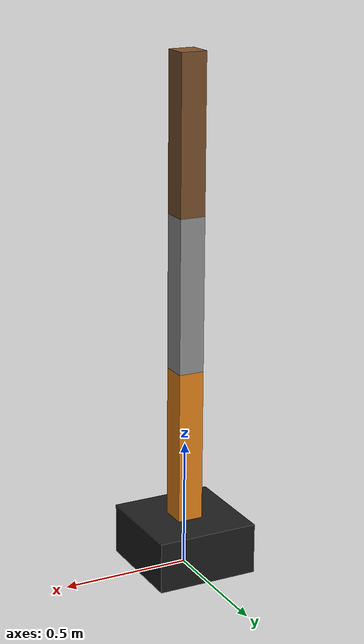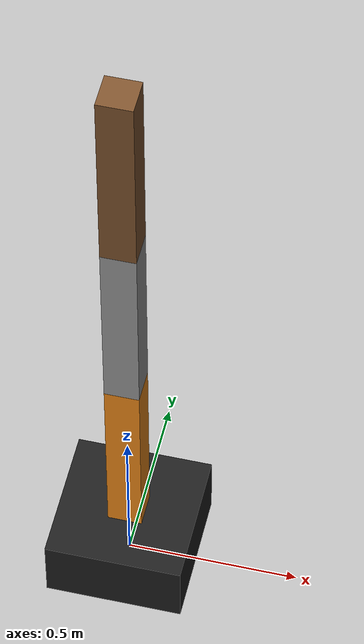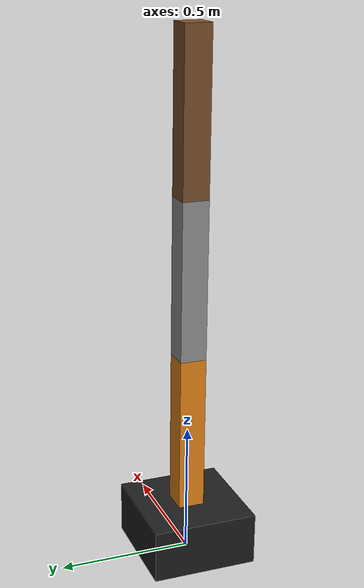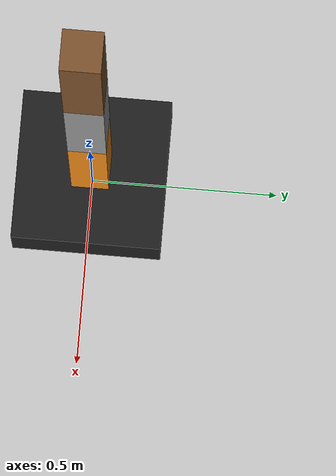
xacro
<?xml version="1.0"?>
<robot name="robarm" xmlns:xacro="http://ros.org/wiki/xacro">

  <!-- Import Rviz colors -->
  <xacro:include filename="$(find robarm_description)/urdf/materials.xacro" />

  <!-- Transmission macro -->
  <xacro:macro name="SimpleTransmission" params="joint n">
    <transmission name="tran${n}">
      <type>transmission_interface/SimpleTransmission</type>
      <joint name="${joint}">
        <hardwareInterface>hardware_interface/EffortJointInterface</hardwareInterface>
      </joint>
      <actuator name="motor${n}">
        <hardwareInterface>hardware_interface/EffortJointInterface</hardwareInterface>
        <mechanicalReduction>1</mechanicalReduction>
      </actuator>
    </transmission>
  </xacro:macro>

  <!-- World -->
  <link name="world">
  </link>

  <!-- World fixed joint-->
  <joint name="world_fixed" type="fixed">
    <origin xyz="0 0 0" rpy="0 0 0"/>
    <parent link="world"/>
    <child link="link1"/>
  </joint>

  <!-- Link 1 -->
  <link name="link1">
    <visual>
      <origin xyz="0 0 0.1" rpy="0 0 0"/>
      <!-- fix geometry later -->
      <geometry>
        <box size="0.4 0.4 0.2"/>
      </geometry>
      <material name="black"/>
    </visual>

    <collision>
      <origin xyz="0 0 0.1" rpy="0 0 0"/>
      <geometry>
        <cylinder radius="0.4" length="0.2"/>
      </geometry>
    </collision>

    <!-- inertia is not correct - change this later -->
    <inertial>
      <mass value="0.1" />
      <inertia ixx="0.001" ixy="0.0" ixz="0.0"
               iyy="0.001" iyz="0.0"
               izz="0.001" />
    </inertial>
  </link>

  <!-- Joint 1 -->
  <joint name="joint1" type="revolute">
    <parent link="link1"/>
    <child link="link2"/>
    <origin xyz="0.0 0.0 0.2" rpy="0 0 0"/>
    <axis xyz="0 0 1"/>
    <limit velocity="4.8" effort="1" lower="${-pi*0.9}" upper="${pi*0.9}" />
  </joint>

  <!-- Transmission 1 -->
  <xacro:SimpleTransmission n="1" joint="joint1" />

  <!--  Link 2 -->
  <link name="link2">
    <visual>
      <origin xyz="0 0 0.3" rpy="0 0 0"/>
      <geometry>
        <box size="0.1 0.1 0.6"/>
      </geometry>
      <material name="orange"/>
    </visual>

    <collision>
      <origin xyz="0 0 0.6" rpy="0 0 0"/>
      <geometry>
        <cylinder radius="0.1" length="0.6"/>
      </geometry>
    </collision>

   <inertial>
      <mass value="0.1" />
      <inertia ixx="0.001" ixy="0.0" ixz="0.0"
               iyy="0.001" iyz="0.0"
               izz="0.001" />
    </inertial>

  </link>

  <!-- Joint 2 -->
  <joint name="joint2" type="revolute">
    <parent link="link2"/>
    <child link="link3"/>
    <origin xyz="0.0 0.0 0.6" rpy="0 0 0"/>
    <axis xyz="0 1 0"/>
    <limit velocity="4.8" effort="1" lower="${-pi*0.9}" upper="${pi*0.9}" />
  </joint>

  <!-- Transmission 2 -->
  <xacro:SimpleTransmission n="2" joint="joint2" />

  <!--  Link 3 -->
  <link name="link3">
    <visual>
      <origin xyz="0 0 0.3" rpy="0 0 0"/>
      <geometry>
        <box size="0.1 0.1 0.6"/>
      </geometry>
      <material name="grey"/>
    </visual>

    <collision>
      <origin xyz="0 0 0.6" rpy="0 0 0"/>
      <geometry>
        <cylinder radius="0.1" length="0.6"/>
      </geometry>
    </collision>

   <inertial>
      <mass value="0.1" />
      <inertia ixx="0.001" ixy="0.0" ixz="0.0"
               iyy="0.001" iyz="0.0"
               izz="0.001" />
    </inertial>

  </link>

  <!-- Joint 3 -->
  <joint name="joint3" type="revolute">
    <parent link="link3"/>
    <child link="link4"/>
    <origin xyz="0.0 0.0 0.6" rpy="0 0 0"/>
    <axis xyz="1 0 0"/>
    <limit velocity="4.8" effort="1" lower="${-pi*0.9}" upper="${pi*0.9}" />
  </joint>

  <!-- Transmission 3 -->
  <xacro:SimpleTransmission n="3" joint="joint3" />

  <!--  Link 4 -->
  <link name="link4">
    <visual>
      <origin xyz="0 0 0.3" rpy="0 0 0"/>
      <geometry>
        <box size="0.1 0.1 0.6"/>
      </geometry>
      <material name="brown"/>
    </visual>

    <collision>
      <origin xyz="0 0 0.6" rpy="0 0 0"/>
      <geometry>
        <cylinder radius="0.1" length="0.6"/>
      </geometry>
    </collision>

   <inertial>
      <mass value="0.1" />
      <inertia ixx="0.00" ixy="0.0" ixz="0.0"
               iyy="0.001" iyz="0.0"
               izz="0.001" />
    </inertial>

  </link>

  <gazebo>
    <plugin name="gazebo_ros_control" filename="libgazebo_ros_control.so">
      <robotNamespace>/robarm</robotNamespace>
      <robotSimType>gazebo_ros_control/DefaultRobotHWSim</robotSimType>
    </plugin>
  </gazebo>

</robot>
